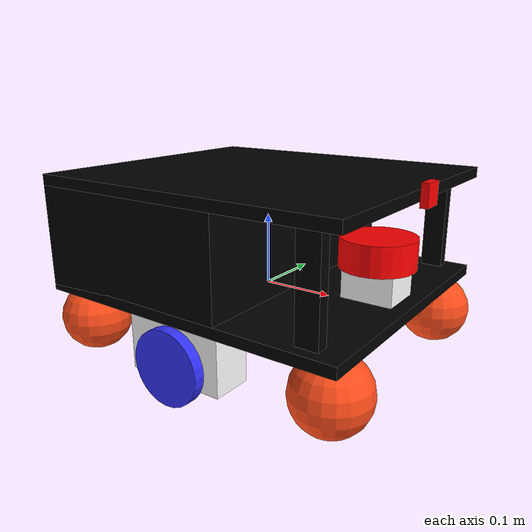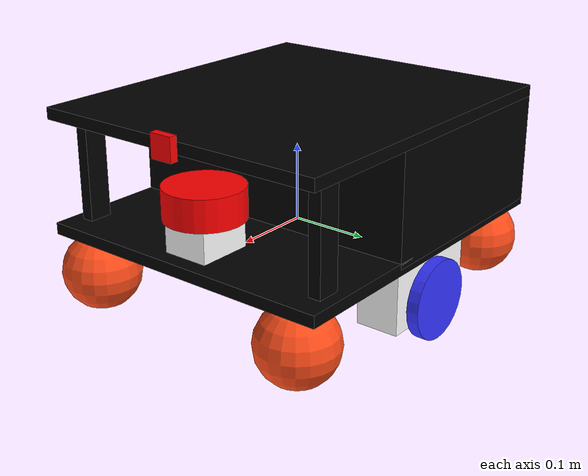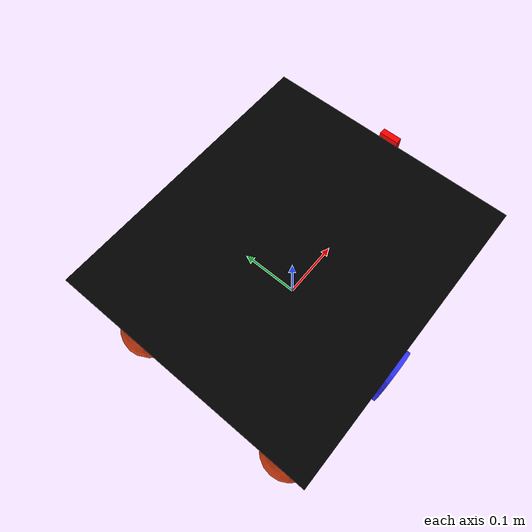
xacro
<?xml version="1.0"?>
<robot xmlns:xacro="http://www.ros.org/wiki/xacro"  name="robot">

      <xacro:arg name="use_ros2_control" default="true"/>

      <xacro:include filename="robot_core.xacro" />
      <xacro:if value="$(arg use_ros2_control)">
         <xacro:include filename="ros2_control.xacro" />
      </xacro:if>

      <xacro:unless value="$(arg use_ros2_control)">
         <xacro:include filename="gazebo_control.xacro" />
      </xacro:unless>

      <xacro:include filename="lidar.xacro" />
      <xacro:include filename="camera.xacro" />
</robot>

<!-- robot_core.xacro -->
<robot xmlns:xacro="http://www.ros.org/wiki/xacro"  >

    <xacro:include filename="inertial_macros.xacro" />

    <material name="white">
         <color rgba="1 1 1 1" />
    </material>

    <material name="orange">
         <color rgba="1 0.3 0.1 1" />
    </material>

    <material name="blue">
         <color rgba="0.2 0.2 1 1" />
    </material>

    <material name="black">
         <color rgba="0 0 0 1" />
    </material>

    <material name="red">
         <color rgba="1 0 0 1" />
    </material>

<!-- BASE LINK -->

    <link name="base_link">

    </link>

<!-- LOWER BODY -->
<joint name="lower_body_joint" type="fixed">
    <parent link="base_link"/>
    <child link="lower_body"/>
    <origin xyz="0 0 0"/>
</joint>

<link name="lower_body">

    <visual>
        <origin xyz="0 0 0.0075"/>
        <geometry>
            <box size="0.45 0.40 0.015"/>
        </geometry>
        <material name="black"/>
    </visual>

    <collision>
        <origin xyz="0 0 0.0075"/>
        <geometry>
            <box size="0.45 0.40 0.015"/>
        </geometry>
    </collision>

    <xacro:inertial_box
        mass="1.0"
        x="0.45"
        y="0.40"
        z="0.015">

        <origin xyz="0 0 0.0075"/>

    </xacro:inertial_box>

</link>

<gazebo reference="lower_body">
    <material>Gazebo/Black</material>
</gazebo>

<!--MIDDLE BODY-->
<joint name="middle_body_joint" type="fixed">
    <parent link="lower_body"/>
    <child link="middle_body"/>
    <origin xyz="-0.08 0 0.0775"/>
</joint>

<link name="middle_body">

    <visual>
        <geometry>
            <box size="0.29 0.40 0.14"/>
        </geometry>
        <material name="black"/>
    </visual>

    <collision>
        <geometry>
            <box size="0.29 0.40 0.14"/>
        </geometry>
    </collision>

    <xacro:inertial_box
        mass="2.0"
        x="0.29"
        y="0.40"
        z="0.14">

        <origin xyz="0 0 0"/>

    </xacro:inertial_box>

</link>

<gazebo reference="middle_body">
    <material>Gazebo/Black</material>
</gazebo>

<!--UPPER BODY-->
<joint name="upper_body_joint" type="fixed">
    <parent link="middle_body"/>
    <child link="upper_body"/>
    <origin xyz="0.08 0 0.0775"/>
</joint>

<link name="upper_body">

    <visual>
        <geometry>
            <box size="0.45 0.40 0.015"/>
        </geometry>

        <material name="black"/>
    </visual>

    <collision>
        <geometry>
            <box size="0.45 0.40 0.015"/>
        </geometry>
    </collision>

    <xacro:inertial_box
        mass="1.0"
        x="0.45"
        y="0.40"
        z="0.015">

        <origin xyz="0 0 0"/>

    </xacro:inertial_box>

</link>

<gazebo reference="upper_body">
    <material>Gazebo/Black</material>
</gazebo>

<!--LIDAR MOUNT-->
<joint name="lidar_mount_joint" type="fixed">
    <parent link="lower_body"/>
    <child link="lidar_mount"/>
    <origin xyz="0.170 0 0.040"/>
</joint>

<link name="lidar_mount">

    <visual>
        <geometry>
            <box size="0.07 0.06 0.05"/>
        </geometry>

        <material name="white"/>

    </visual>

    <collision>

        <geometry>
            <box size="0.07 0.06 0.05"/>
        </geometry>

    </collision>

    <xacro:inertial_box
        mass="0.20"
        x="0.07"
        y="0.06"
        z="0.05">

        <origin xyz="0 0 0"/>

    </xacro:inertial_box>

</link>

<gazebo reference="lidar_mount">
    <material>Gazebo/White</material>
</gazebo>

<!--front_left_pillar_joint-->
<joint name="front_left_pillar_joint" type="fixed">
    <parent link="lower_body"/>
    <child link="front_left_pillar"/>
    <origin xyz="0.18 0.177 0.085"/>
</joint>

<link name="front_left_pillar">

    <visual>
        <geometry>
            <box size="0.03 0.016 0.14"/>
        </geometry>
        <material name="black"/>
    </visual>

    <collision>
        <geometry>
            <box size="0.03 0.016 0.14"/>
        </geometry>
    </collision>

    <xacro:inertial_box
        mass="0.15"
        x="0.03"
        y="0.016"
        z="0.14">
        <origin xyz="0 0 0"/>
    </xacro:inertial_box>

</link>

<gazebo reference="front_left_pillar">
    <material>Gazebo/Black</material>
</gazebo>

<!--front_right_pillar_joint-->
<joint name="front_right_pillar_joint" type="fixed">
    <parent link="lower_body"/>
    <child link="front_right_pillar"/>
    <origin xyz="0.18 -0.177 0.085"/>
</joint>

<link name="front_right_pillar">

    <visual>
        <geometry>
            <box size="0.03 0.016 0.14"/>
        </geometry>
        <material name="black"/>
    </visual>

    <collision>
        <geometry>
            <box size="0.03 0.016 0.14"/>
        </geometry>
    </collision>

    <xacro:inertial_box
        mass="0.15"
        x="0.03"
        y="0.016"
        z="0.14">
        <origin xyz="0 0 0"/>
    </xacro:inertial_box>

</link>

<gazebo reference="front_right_pillar">
    <material>Gazebo/Black</material>
</gazebo>

<!-- LEFT MOTOR -->
<joint name="left_motor_joint" type="fixed">
    <parent link="lower_body"/>
    <child link="left_motor"/>
    <origin xyz="0 0.1725 -0.037"/>
</joint>

<link name="left_motor">

    <visual>
        <origin xyz="0 0 0"/>
        <geometry>
            <box size="0.14 0.055 0.074"/>
        </geometry>
        <material name="white"/>
    </visual>

    <collision>
        <origin xyz="0 0 0"/>
        <geometry>
            <box size="0.14 0.055 0.074"/>
        </geometry>
    </collision>

    <xacro:inertial_box
        mass="0.5"
        x="0.14"
        y="0.055"
        z="0.074">

        <origin xyz="0 0 0"/>

    </xacro:inertial_box>

</link>

<gazebo reference="left_motor">
    <material>Gazebo/White</material>
</gazebo>

<!-- RIGHT MOTOR -->
<joint name="right_motor_joint" type="fixed">
    <parent link="lower_body"/>
    <child link="right_motor"/>
    <origin xyz="0 -0.1725 -0.037"/>
</joint>

<link name="right_motor">

    <visual>
        <origin xyz="0 0 0"/>
        <geometry>
            <box size="0.14 0.055 0.074"/>
        </geometry>
        <material name="white"/>
    </visual>

    <collision>
        <origin xyz="0 0 0"/>
        <geometry>
            <box size="0.14 0.055 0.074"/>
        </geometry>
    </collision>

    <xacro:inertial_box
        mass="0.5"
        x="0.14"
        y="0.055"
        z="0.074">

        <origin xyz="0 0 0"/>

    </xacro:inertial_box>

</link>

<gazebo reference="right_motor">
    <material>Gazebo/White</material>
</gazebo>

<!-- LEFT WHEEL-->
<joint name="left_wheel_joint" type="continuous">
    <parent link="base_link"/>
    <child link="left_wheel"/>
    <origin xyz="0 0.2075 -0.05" rpy="-${pi/2} 0 0"/>
    <axis xyz="0 0 1"/>
</joint>

<link name="left_wheel">

    <visual>
        <geometry>
            <cylinder radius="0.05" length="0.015"/>
        </geometry>
        <material name="blue"/>
    </visual>

    <collision>
        <geometry>
            <cylinder radius="0.047" length="0.015"/>
        </geometry>
    </collision>

    <xacro:inertial_cylinder
        mass="0.25"
        radius="0.05"
        length="0.015">

        <origin xyz="0 0 0"/>

    </xacro:inertial_cylinder>

</link>

<gazebo reference="left_wheel">
    <material>Gazebo/Blue</material>
</gazebo>

<!-- RIGHT WHEEL -->
<joint name="right_wheel_joint" type="continuous">
    <parent link="base_link"/>
    <child link="right_wheel"/>
    <origin xyz="0 -0.2075 -0.05" rpy="${pi/2} 0 0"/>
    <axis xyz="0 0 -1"/>
</joint>

<link name="right_wheel">

    <visual>
        <geometry>
            <cylinder radius="0.05" length="0.015"/>
        </geometry>
        <material name="blue"/>
    </visual>

    <collision>
        <geometry>
            <cylinder radius="0.05" length="0.015"/>
        </geometry>
    </collision>

    <xacro:inertial_cylinder
        mass="0.25"
        radius="0.05"
        length="0.015">

        <origin xyz="0 0 0"/>

    </xacro:inertial_cylinder>

</link>

<gazebo reference="right_wheel">
    <material>Gazebo/Blue</material>
</gazebo>

<!-- FRONT LEFT CASTER -->
<joint name="caster_front_left_joint" type="fixed">
    <parent link="lower_body"/>
    <child link="caster_front_left"/>
    <origin xyz="0.195 0.155 -0.045"/>
</joint>

<link name="caster_front_left">

    <visual>
        <geometry>
            <sphere radius="0.05"/>
        </geometry>
        <material name="orange"/>
    </visual>

    <collision>
        <geometry>
            <sphere radius="0.05"/>
        </geometry>
    </collision>

    <xacro:inertial_sphere mass="0.10" radius="0.05">
        <origin xyz="0 0 0"/>
    </xacro:inertial_sphere>

</link>

<gazebo reference="caster_front_left">
    <material>Gazebo/Orange</material>
    <mu1 value="0.001"/>
    <mu2 value="0.001"/>
</gazebo>

<!-- FRONT RIGHT CASTER -->
<joint name="caster_front_right_joint" type="fixed">
    <parent link="lower_body"/>
    <child link="caster_front_right"/>
    <origin xyz="0.195 -0.155 -0.045"/>
</joint>

<link name="caster_front_right">

    <visual>
        <geometry>
            <sphere radius="0.05"/>
        </geometry>
        <material name="orange"/>
    </visual>

    <collision>
        <geometry>
            <sphere radius="0.05"/>
        </geometry>
    </collision>

    <xacro:inertial_sphere mass="0.10" radius="0.05">
        <origin xyz="0 0 0"/>
    </xacro:inertial_sphere>

</link>

<gazebo reference="caster_front_right">
    <material>Gazebo/Orange</material>
    <mu1 value="0.001"/>
    <mu2 value="0.001"/>
</gazebo>

<!-- REAR LEFT CASTER -->
<joint name="caster_rear_left_joint" type="fixed">
    <parent link="lower_body"/>
    <child link="caster_rear_left"/>
    <origin xyz="-0.195 0.155 -0.045"/>
</joint>

<link name="caster_rear_left">

    <visual>
        <geometry>
            <sphere radius="0.05"/>
        </geometry>
        <material name="orange"/>
    </visual>

    <collision>
        <geometry>
            <sphere radius="0.05"/>
        </geometry>
    </collision>

    <xacro:inertial_sphere mass="0.10" radius="0.05">
        <origin xyz="0 0 0"/>
    </xacro:inertial_sphere>

</link>

<gazebo reference="caster_rear_left">
    <material>Gazebo/Orange</material>
    <mu1 value="0.001"/>
    <mu2 value="0.001"/>
</gazebo>

<!-- REAR RIGHT CASTER -->
<joint name="caster_rear_right_joint" type="fixed">
    <parent link="lower_body"/>
    <child link="caster_rear_right"/>
    <origin xyz="-0.195 -0.155 -0.045"/>
</joint>

<link name="caster_rear_right">

    <visual>
        <geometry>
            <sphere radius="0.05"/>
        </geometry>
        <material name="orange"/>
    </visual>

    <collision>
        <geometry>
            <sphere radius="0.05"/>
        </geometry>
    </collision>

    <xacro:inertial_sphere mass="0.10" radius="0.05">
        <origin xyz="0 0 0"/>
    </xacro:inertial_sphere>

</link>

<gazebo reference="caster_rear_right">
    <material>Gazebo/Orange</material>
    <mu1 value="0.001"/>
    <mu2 value="0.001"/>
</gazebo>

</robot>

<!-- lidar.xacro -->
<robot xmlns:xacro="http://www.ros.org/wiki/xacro"  >

    <joint name="laser_joint" type="fixed">
       <parent link="lidar_mount"/>
       <child link="laser_frame"/>
       <origin xyz="0 0 0.035" rpy="0 0 ${pi}"/>
    </joint>

    <link name="laser_frame">
        <visual>
           <geometry>
             <cylinder radius="0.05" length="0.04" />
           </geometry>
           <material name="red" />
        </visual>

        <collision>
           <geometry>
             <cylinder radius="0.05" length="0.04" />
           </geometry>
        </collision>
        <xacro:inertial_cylinder mass="0.1" length="0.04" radius="0.05">
              <origin xyz="0 0 0" rpy="0 0 0" />
        </xacro:inertial_cylinder>
    </link>

    <gazebo reference="laser_frame">
       <material>Gazebo/Red</material>

       <sensor name="laser" type="ray">
           <pose> 0 0 0 0 0 0 </pose>
           <visualize>true</visualize>
           <update_rate>10</update_rate>
           <ray>
              <scan>
                   <horizontal>
                         <samples>360</samples>
                         <resolution>1</resolution>
                         <min_angle>-3.14</min_angle>
                         <max_angle>3.14</max_angle>
                    </horizontal>
                </scan>
                <range>
                    <min>0.3</min>
                    <max>12</max>
                    <resolution>0.01</resolution>
                </range>
            </ray>
            <plugin name="laser_controller" filename="libgazebo_ros_ray_sensor.so">
                <ros>
                    <argument>~/out:=scan</argument>
                </ros>
                <output_type>sensor_msgs/LaserScan</output_type>
                <frame_name>laser_frame</frame_name>
            </plugin>
        </sensor>
    </gazebo>

</robot>

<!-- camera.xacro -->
<robot xmlns:xacro="http://www.ros.org/wiki/xacro"  >

    <joint name="camera_joint" type="fixed">
       <parent link="upper_body"/>
       <child link="camera_link"/>
       <origin xyz="0.230 0 0" rpy="0 0 0"/>
    </joint>

    <link name="camera_link">
        <visual>
           <geometry>
             <box size="0.010 0.03 0.03" />
           </geometry>
           <material name="red" />
        </visual>

    </link>

    <joint name="camera_optical_joint" type="fixed">
       <parent link="camera_link"/>
       <child link="camera_link_optical"/>
       <origin xyz="0 0 0" rpy="${-pi/2} 0 ${pi/2}"/>
    </joint>

    <link name="camera_link_optical"></link>

    <gazebo reference="camera_link">
       <material>Gazebo/Red</material>

       <sensor name="camera" type="camera">
           <pose> 0 0 0 0 0 0 </pose>
           <visualize>true</visualize>
           <update_rate>10</update_rate>
           <camera>
               <horizontal_fov>1.089</horizontal_fov>
               <image>
                    <format>R8G8B8</format>
                    <width>640</width>
                    <height>480</height>3
                </image>
                <clip>
                    <near>0.05</near>
                    <far>8.0</far>
                </clip>
            </camera>

            <plugin name="camera_controller" filename="libgazebo_ros_camera.so">
                <frame_name>camera_link_optical</frame_name>
            </plugin>
        </sensor>
    </gazebo>

</robot>
